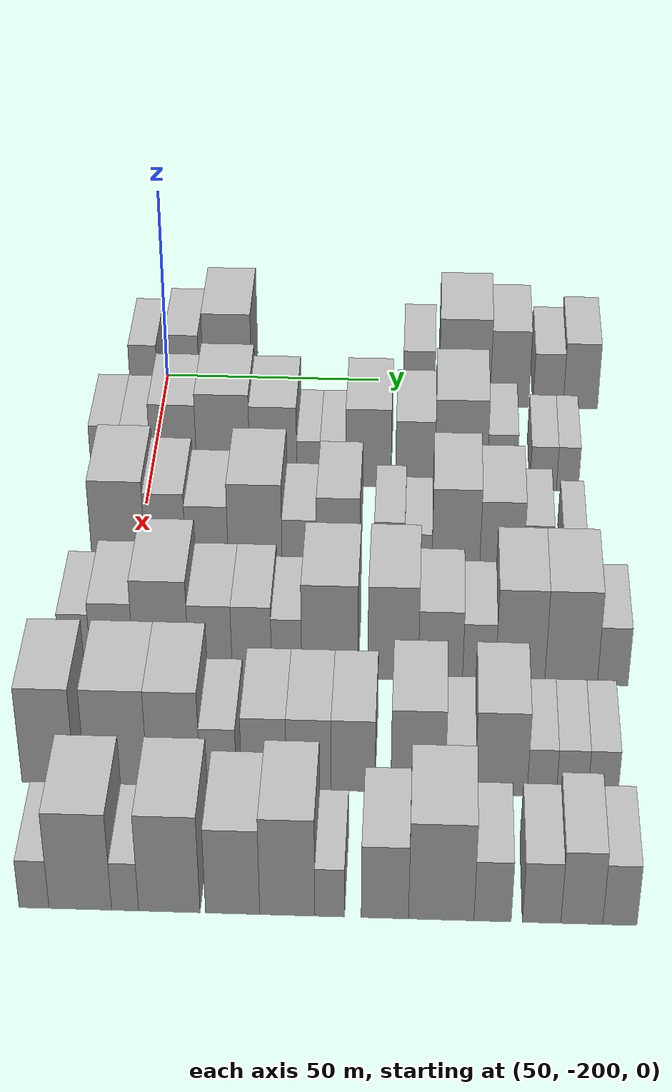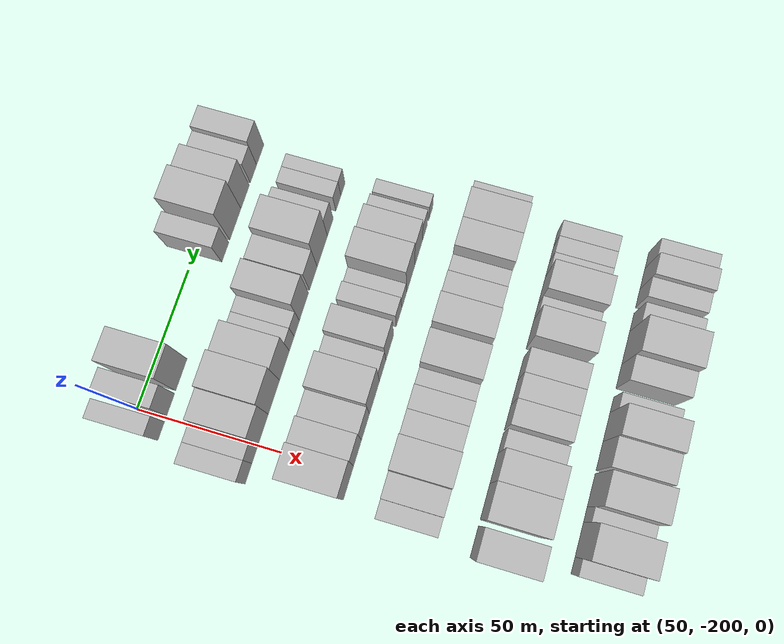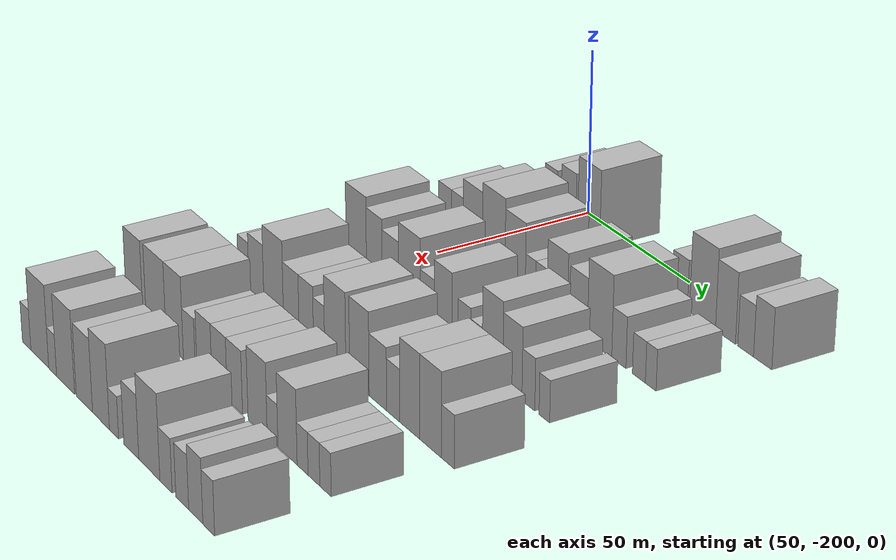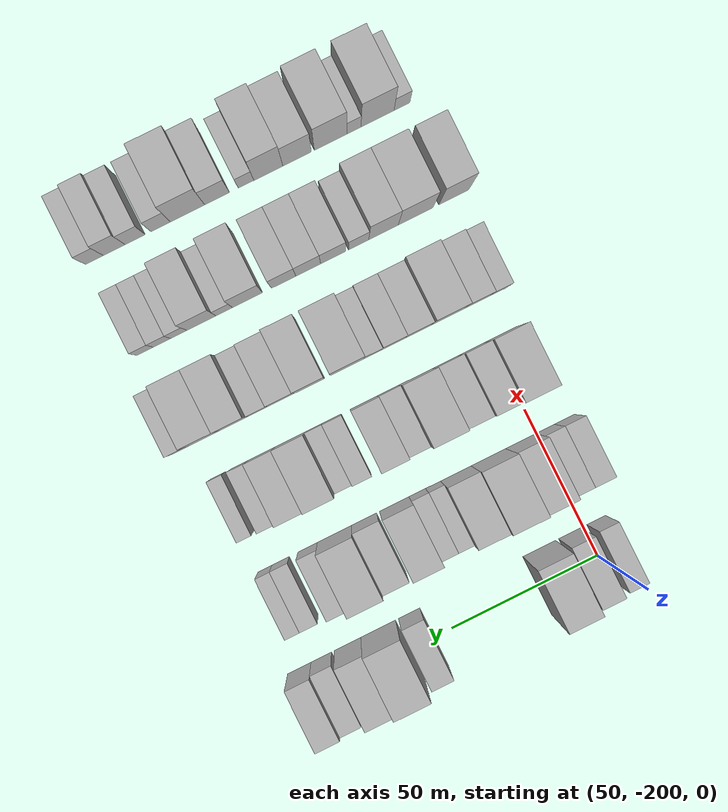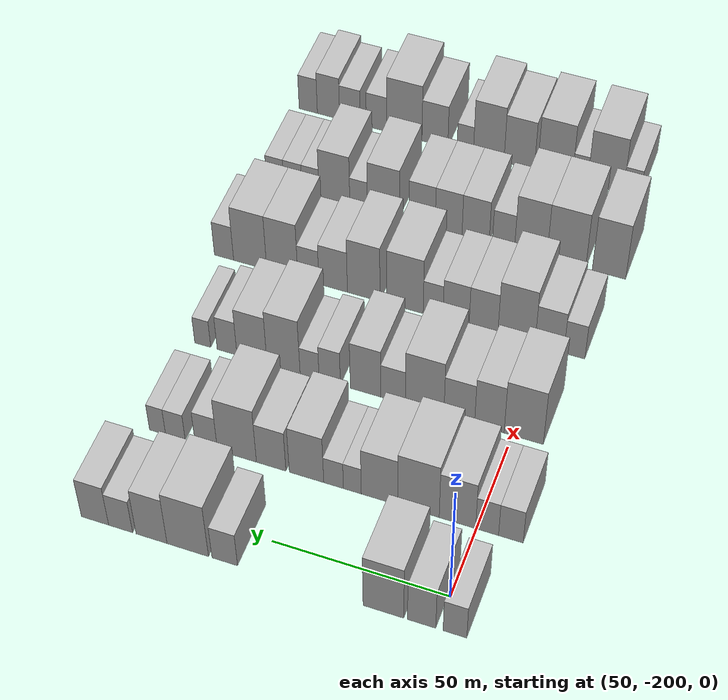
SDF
<sdf version="1.6">
 <world name="default">
  <model name="building_39">
   <static>1</static>
   <pose>50.0000 -204.4974 0 0.000000 0.000000 0.000000</pose>
   <link name="link">
    <pose>0 0 7.50 0 0 0</pose>
    <collision name="collision"><geometry><box><size>20.0000 6.4379 15.0000</size></box></geometry></collision>
    <visual name="visual">
     <cast_shadows>0</cast_shadows>
     <geometry><box><size>20.0000 6.4379 15.0000</size></box></geometry>
     <material>
      <script>
       <uri>model://HANNAS_wall/materials/scripts</uri>
       <uri>model://HANNAS_wall/materials/textures</uri>
       <name>vrc/HANNAS_wall</name>
      </script>
     </material>
    </visual>
   </link>
  </model>
  <model name="building_40">
   <static>1</static>
   <pose>50.0000 -195.4062 0 0.000000 0.000000 0.000000</pose>
   <link name="link">
    <pose>0 0 9.00 0 0 0</pose>
    <collision name="collision"><geometry><box><size>20.0000 7.7446 18.0000</size></box></geometry></collision>
    <visual name="visual">
     <cast_shadows>0</cast_shadows>
     <geometry><box><size>20.0000 7.7446 18.0000</size></box></geometry>
     <material>
      <script>
       <uri>model://HANNAS_wall/materials/scripts</uri>
       <uri>model://HANNAS_wall/materials/textures</uri>
       <name>vrc/HANNAS_wall</name>
      </script>
     </material>
    </visual>
   </link>
  </model>
  <model name="building_41">
   <static>1</static>
   <pose>50.0000 -184.9227 0 0.000000 0.000000 0.000000</pose>
   <link name="link">
    <pose>0 0 12.00 0 0 0</pose>
    <collision name="collision"><geometry><box><size>20.0000 11.2224 24.0000</size></box></geometry></collision>
    <visual name="visual">
     <cast_shadows>0</cast_shadows>
     <geometry><box><size>20.0000 11.2224 24.0000</size></box></geometry>
     <material>
      <script>
       <uri>model://HANNAS_wall/materials/scripts</uri>
       <uri>model://HANNAS_wall/materials/textures</uri>
       <name>vrc/HANNAS_wall</name>
      </script>
     </material>
    </visual>
   </link>
  </model>
  <model name="building_42">
   <static>1</static>
   <pose>50.0000 -140.3606 0 0.000000 0.000000 0.000000</pose>
   <link name="link">
    <pose>0 0 7.50 0 0 0</pose>
    <collision name="collision"><geometry><box><size>20.0000 7.3006 15.0000</size></box></geometry></collision>
    <visual name="visual">
     <cast_shadows>0</cast_shadows>
     <geometry><box><size>20.0000 7.3006 15.0000</size></box></geometry>
     <material>
      <script>
       <uri>model://HANNAS_wall/materials/scripts</uri>
       <uri>model://HANNAS_wall/materials/textures</uri>
       <name>vrc/HANNAS_wall</name>
      </script>
     </material>
    </visual>
   </link>
  </model>
  <model name="building_43">
   <static>1</static>
   <pose>50.0000 -129.7411 0 0.000000 0.000000 0.000000</pose>
   <link name="link">
    <pose>0 0 12.00 0 0 0</pose>
    <collision name="collision"><geometry><box><size>20.0000 11.9384 24.0000</size></box></geometry></collision>
    <visual name="visual">
     <cast_shadows>0</cast_shadows>
     <geometry><box><size>20.0000 11.9384 24.0000</size></box></geometry>
     <material>
      <script>
       <uri>model://HANNAS_wall/materials/scripts</uri>
       <uri>model://HANNAS_wall/materials/textures</uri>
       <name>vrc/HANNAS_wall</name>
      </script>
     </material>
    </visual>
   </link>
  </model>
  <model name="building_44">
   <static>1</static>
   <pose>50.0000 -119.2657 0 0.000000 0.000000 0.000000</pose>
   <link name="link">
    <pose>0 0 10.50 0 0 0</pose>
    <collision name="collision"><geometry><box><size>20.0000 9.0125 21.0000</size></box></geometry></collision>
    <visual name="visual">
     <cast_shadows>0</cast_shadows>
     <geometry><box><size>20.0000 9.0125 21.0000</size></box></geometry>
     <material>
      <script>
       <uri>model://HANNAS_wall/materials/scripts</uri>
       <uri>model://HANNAS_wall/materials/textures</uri>
       <name>vrc/HANNAS_wall</name>
      </script>
     </material>
    </visual>
   </link>
  </model>
  <model name="building_45">
   <static>1</static>
   <pose>50.0000 -110.2543 0 0.000000 0.000000 0.000000</pose>
   <link name="link">
    <pose>0 0 7.50 0 0 0</pose>
    <collision name="collision"><geometry><box><size>20.0000 7.0103 15.0000</size></box></geometry></collision>
    <visual name="visual">
     <cast_shadows>0</cast_shadows>
     <geometry><box><size>20.0000 7.0103 15.0000</size></box></geometry>
     <material>
      <script>
       <uri>model://HANNAS_wall/materials/scripts</uri>
       <uri>model://HANNAS_wall/materials/textures</uri>
       <name>vrc/HANNAS_wall</name>
      </script>
     </material>
    </visual>
   </link>
  </model>
  <model name="building_46">
   <static>1</static>
   <pose>50.0000 -102.7471 0 0.000000 0.000000 0.000000</pose>
   <link name="link">
    <pose>0 0 9.00 0 0 0</pose>
    <collision name="collision"><geometry><box><size>20.0000 8.0040 18.0000</size></box></geometry></collision>
    <visual name="visual">
     <cast_shadows>0</cast_shadows>
     <geometry><box><size>20.0000 8.0040 18.0000</size></box></geometry>
     <material>
      <script>
       <uri>model://HANNAS_wall/materials/scripts</uri>
       <uri>model://HANNAS_wall/materials/textures</uri>
       <name>vrc/HANNAS_wall</name>
      </script>
     </material>
    </visual>
   </link>
  </model>
  <model name="building_161">
   <static>1</static>
   <pose>82.0000 -209.4993 0 0.000000 0.000000 0.000000</pose>
   <link name="link">
    <pose>0 0 7.50 0 0 0</pose>
    <collision name="collision"><geometry><box><size>20.0000 6.8890 15.0000</size></box></geometry></collision>
    <visual name="visual">
     <cast_shadows>0</cast_shadows>
     <geometry><box><size>20.0000 6.8890 15.0000</size></box></geometry>
     <material>
      <script>
       <uri>model://HANNAS_wall/materials/scripts</uri>
       <uri>model://HANNAS_wall/materials/textures</uri>
       <name>vrc/HANNAS_wall</name>
      </script>
     </material>
    </visual>
   </link>
  </model>
  <model name="building_162">
   <static>1</static>
   <pose>82.0000 -202.8334 0 0.000000 0.000000 0.000000</pose>
   <link name="link">
    <pose>0 0 7.50 0 0 0</pose>
    <collision name="collision"><geometry><box><size>20.0000 6.4428 15.0000</size></box></geometry></collision>
    <visual name="visual">
     <cast_shadows>0</cast_shadows>
     <geometry><box><size>20.0000 6.4428 15.0000</size></box></geometry>
     <material>
      <script>
       <uri>model://HANNAS_wall/materials/scripts</uri>
       <uri>model://HANNAS_wall/materials/textures</uri>
       <name>vrc/HANNAS_wall</name>
      </script>
     </material>
    </visual>
   </link>
  </model>
  <model name="building_163">
   <static>1</static>
   <pose>82.0000 -194.4719 0 0.000000 0.000000 0.000000</pose>
   <link name="link">
    <pose>0 0 10.50 0 0 0</pose>
    <collision name="collision"><geometry><box><size>20.0000 10.2802 21.0000</size></box></geometry></collision>
    <visual name="visual">
     <cast_shadows>0</cast_shadows>
     <geometry><box><size>20.0000 10.2802 21.0000</size></box></geometry>
     <material>
      <script>
       <uri>model://HANNAS_wall/materials/scripts</uri>
       <uri>model://HANNAS_wall/materials/textures</uri>
       <name>vrc/HANNAS_wall</name>
      </script>
     </material>
    </visual>
   </link>
  </model>
  <model name="building_164">
   <static>1</static>
   <pose>82.0000 -183.4232 0 0.000000 0.000000 0.000000</pose>
   <link name="link">
    <pose>0 0 12.00 0 0 0</pose>
    <collision name="collision"><geometry><box><size>20.0000 11.8173 24.0000</size></box></geometry></collision>
    <visual name="visual">
     <cast_shadows>0</cast_shadows>
     <geometry><box><size>20.0000 11.8173 24.0000</size></box></geometry>
     <material>
      <script>
       <uri>model://HANNAS_wall/materials/scripts</uri>
       <uri>model://HANNAS_wall/materials/textures</uri>
       <name>vrc/HANNAS_wall</name>
      </script>
     </material>
    </visual>
   </link>
  </model>
  <model name="building_165">
   <static>1</static>
   <pose>82.0000 -172.2883 0 0.000000 0.000000 0.000000</pose>
   <link name="link">
    <pose>0 0 10.50 0 0 0</pose>
    <collision name="collision"><geometry><box><size>20.0000 10.4525 21.0000</size></box></geometry></collision>
    <visual name="visual">
     <cast_shadows>0</cast_shadows>
     <geometry><box><size>20.0000 10.4525 21.0000</size></box></geometry>
     <material>
      <script>
       <uri>model://HANNAS_wall/materials/scripts</uri>
       <uri>model://HANNAS_wall/materials/textures</uri>
       <name>vrc/HANNAS_wall</name>
      </script>
     </material>
    </visual>
   </link>
  </model>
  <model name="building_166">
   <static>1</static>
   <pose>82.0000 -164.4801 0 0.000000 0.000000 0.000000</pose>
   <link name="link">
    <pose>0 0 6.00 0 0 0</pose>
    <collision name="collision"><geometry><box><size>20.0000 5.1637 12.0000</size></box></geometry></collision>
    <visual name="visual">
     <cast_shadows>0</cast_shadows>
     <geometry><box><size>20.0000 5.1637 12.0000</size></box></geometry>
     <material>
      <script>
       <uri>model://HANNAS_wall/materials/scripts</uri>
       <uri>model://HANNAS_wall/materials/textures</uri>
       <name>vrc/HANNAS_wall</name>
      </script>
     </material>
    </visual>
   </link>
  </model>
  <model name="building_167">
   <static>1</static>
   <pose>82.0000 -159.0493 0 0.000000 0.000000 0.000000</pose>
   <link name="link">
    <pose>0 0 6.00 0 0 0</pose>
    <collision name="collision"><geometry><box><size>20.0000 5.6979 12.0000</size></box></geometry></collision>
    <visual name="visual">
     <cast_shadows>0</cast_shadows>
     <geometry><box><size>20.0000 5.6979 12.0000</size></box></geometry>
     <material>
      <script>
       <uri>model://HANNAS_wall/materials/scripts</uri>
       <uri>model://HANNAS_wall/materials/textures</uri>
       <name>vrc/HANNAS_wall</name>
      </script>
     </material>
    </visual>
   </link>
  </model>
  <model name="building_168">
   <static>1</static>
   <pose>82.0000 -151.1769 0 0.000000 0.000000 0.000000</pose>
   <link name="link">
    <pose>0 0 10.50 0 0 0</pose>
    <collision name="collision"><geometry><box><size>20.0000 10.0469 21.0000</size></box></geometry></collision>
    <visual name="visual">
     <cast_shadows>0</cast_shadows>
     <geometry><box><size>20.0000 10.0469 21.0000</size></box></geometry>
     <material>
      <script>
       <uri>model://HANNAS_wall/materials/scripts</uri>
       <uri>model://HANNAS_wall/materials/textures</uri>
       <name>vrc/HANNAS_wall</name>
      </script>
     </material>
    </visual>
   </link>
  </model>
  <model name="building_169">
   <static>1</static>
   <pose>82.0000 -140.8138 0 0.000000 0.000000 0.000000</pose>
   <link name="link">
    <pose>0 0 9.00 0 0 0</pose>
    <collision name="collision"><geometry><box><size>20.0000 8.6794 18.0000</size></box></geometry></collision>
    <visual name="visual">
     <cast_shadows>0</cast_shadows>
     <geometry><box><size>20.0000 8.6794 18.0000</size></box></geometry>
     <material>
      <script>
       <uri>model://HANNAS_wall/materials/scripts</uri>
       <uri>model://HANNAS_wall/materials/textures</uri>
       <name>vrc/HANNAS_wall</name>
      </script>
     </material>
    </visual>
   </link>
  </model>
  <model name="building_170">
   <static>1</static>
   <pose>82.0000 -130.6874 0 0.000000 0.000000 0.000000</pose>
   <link name="link">
    <pose>0 0 12.00 0 0 0</pose>
    <collision name="collision"><geometry><box><size>20.0000 11.5734 24.0000</size></box></geometry></collision>
    <visual name="visual">
     <cast_shadows>0</cast_shadows>
     <geometry><box><size>20.0000 11.5734 24.0000</size></box></geometry>
     <material>
      <script>
       <uri>model://HANNAS_wall/materials/scripts</uri>
       <uri>model://HANNAS_wall/materials/textures</uri>
       <name>vrc/HANNAS_wall</name>
      </script>
     </material>
    </visual>
   </link>
  </model>
  <model name="building_171">
   <static>1</static>
   <pose>82.0000 -121.5918 0 0.000000 0.000000 0.000000</pose>
   <link name="link">
    <pose>0 0 7.50 0 0 0</pose>
    <collision name="collision"><geometry><box><size>20.0000 6.6177 15.0000</size></box></geometry></collision>
    <visual name="visual">
     <cast_shadows>0</cast_shadows>
     <geometry><box><size>20.0000 6.6177 15.0000</size></box></geometry>
     <material>
      <script>
       <uri>model://HANNAS_wall/materials/scripts</uri>
       <uri>model://HANNAS_wall/materials/textures</uri>
       <name>vrc/HANNAS_wall</name>
      </script>
     </material>
    </visual>
   </link>
  </model>
  <model name="building_172">
   <static>1</static>
   <pose>82.0000 -112.3266 0 0.000000 0.000000 0.000000</pose>
   <link name="link">
    <pose>0 0 6.00 0 0 0</pose>
    <collision name="collision"><geometry><box><size>20.0000 5.9127 12.0000</size></box></geometry></collision>
    <visual name="visual">
     <cast_shadows>0</cast_shadows>
     <geometry><box><size>20.0000 5.9127 12.0000</size></box></geometry>
     <material>
      <script>
       <uri>model://HANNAS_wall/materials/scripts</uri>
       <uri>model://HANNAS_wall/materials/textures</uri>
       <name>vrc/HANNAS_wall</name>
      </script>
     </material>
    </visual>
   </link>
  </model>
  <model name="building_173">
   <static>1</static>
   <pose>82.0000 -106.9481 0 0.000000 0.000000 0.000000</pose>
   <link name="link">
    <pose>0 0 6.00 0 0 0</pose>
    <collision name="collision"><geometry><box><size>20.0000 4.8443 12.0000</size></box></geometry></collision>
    <visual name="visual">
     <cast_shadows>0</cast_shadows>
     <geometry><box><size>20.0000 4.8443 12.0000</size></box></geometry>
     <material>
      <script>
       <uri>model://HANNAS_wall/materials/scripts</uri>
       <uri>model://HANNAS_wall/materials/textures</uri>
       <name>vrc/HANNAS_wall</name>
      </script>
     </material>
    </visual>
   </link>
  </model>
  <model name="building_285">
   <static>1</static>
   <pose>114.0000 -203.1136 0 0.000000 0.000000 0.000000</pose>
   <link name="link">
    <pose>0 0 12.00 0 0 0</pose>
    <collision name="collision"><geometry><box><size>20.0000 11.3482 24.0000</size></box></geometry></collision>
    <visual name="visual">
     <cast_shadows>0</cast_shadows>
     <geometry><box><size>20.0000 11.3482 24.0000</size></box></geometry>
     <material>
      <script>
       <uri>model://HANNAS_wall/materials/scripts</uri>
       <uri>model://HANNAS_wall/materials/textures</uri>
       <name>vrc/HANNAS_wall</name>
      </script>
     </material>
    </visual>
   </link>
  </model>
  <model name="building_286">
   <static>1</static>
   <pose>114.0000 -193.1419 0 0.000000 0.000000 0.000000</pose>
   <link name="link">
    <pose>0 0 10.50 0 0 0</pose>
    <collision name="collision"><geometry><box><size>20.0000 8.5953 21.0000</size></box></geometry></collision>
    <visual name="visual">
     <cast_shadows>0</cast_shadows>
     <geometry><box><size>20.0000 8.5953 21.0000</size></box></geometry>
     <material>
      <script>
       <uri>model://HANNAS_wall/materials/scripts</uri>
       <uri>model://HANNAS_wall/materials/textures</uri>
       <name>vrc/HANNAS_wall</name>
      </script>
     </material>
    </visual>
   </link>
  </model>
  <model name="building_287">
   <static>1</static>
   <pose>114.0000 -184.3505 0 0.000000 0.000000 0.000000</pose>
   <link name="link">
    <pose>0 0 9.00 0 0 0</pose>
    <collision name="collision"><geometry><box><size>20.0000 8.9875 18.0000</size></box></geometry></collision>
    <visual name="visual">
     <cast_shadows>0</cast_shadows>
     <geometry><box><size>20.0000 8.9875 18.0000</size></box></geometry>
     <material>
      <script>
       <uri>model://HANNAS_wall/materials/scripts</uri>
       <uri>model://HANNAS_wall/materials/textures</uri>
       <name>vrc/HANNAS_wall</name>
      </script>
     </material>
    </visual>
   </link>
  </model>
  <model name="building_288">
   <static>1</static>
   <pose>114.0000 -174.1548 0 0.000000 0.000000 0.000000</pose>
   <link name="link">
    <pose>0 0 12.00 0 0 0</pose>
    <collision name="collision"><geometry><box><size>20.0000 11.4039 24.0000</size></box></geometry></collision>
    <visual name="visual">
     <cast_shadows>0</cast_shadows>
     <geometry><box><size>20.0000 11.4039 24.0000</size></box></geometry>
     <material>
      <script>
       <uri>model://HANNAS_wall/materials/scripts</uri>
       <uri>model://HANNAS_wall/materials/textures</uri>
       <name>vrc/HANNAS_wall</name>
      </script>
     </material>
    </visual>
   </link>
  </model>
  <model name="building_289">
   <static>1</static>
   <pose>114.0000 -164.8099 0 0.000000 0.000000 0.000000</pose>
   <link name="link">
    <pose>0 0 7.50 0 0 0</pose>
    <collision name="collision"><geometry><box><size>20.0000 7.2859 15.0000</size></box></geometry></collision>
    <visual name="visual">
     <cast_shadows>0</cast_shadows>
     <geometry><box><size>20.0000 7.2859 15.0000</size></box></geometry>
     <material>
      <script>
       <uri>model://HANNAS_wall/materials/scripts</uri>
       <uri>model://HANNAS_wall/materials/textures</uri>
       <name>vrc/HANNAS_wall</name>
      </script>
     </material>
    </visual>
   </link>
  </model>
  <model name="building_290">
   <static>1</static>
   <pose>114.0000 -156.6098 0 0.000000 0.000000 0.000000</pose>
   <link name="link">
    <pose>0 0 10.50 0 0 0</pose>
    <collision name="collision"><geometry><box><size>20.0000 9.1144 21.0000</size></box></geometry></collision>
    <visual name="visual">
     <cast_shadows>0</cast_shadows>
     <geometry><box><size>20.0000 9.1144 21.0000</size></box></geometry>
     <material>
      <script>
       <uri>model://HANNAS_wall/materials/scripts</uri>
       <uri>model://HANNAS_wall/materials/textures</uri>
       <name>vrc/HANNAS_wall</name>
      </script>
     </material>
    </visual>
   </link>
  </model>
  <model name="building_291">
   <static>1</static>
   <pose>114.0000 -145.8447 0 0.000000 0.000000 0.000000</pose>
   <link name="link">
    <pose>0 0 7.50 0 0 0</pose>
    <collision name="collision"><geometry><box><size>20.0000 6.4157 15.0000</size></box></geometry></collision>
    <visual name="visual">
     <cast_shadows>0</cast_shadows>
     <geometry><box><size>20.0000 6.4157 15.0000</size></box></geometry>
     <material>
      <script>
       <uri>model://HANNAS_wall/materials/scripts</uri>
       <uri>model://HANNAS_wall/materials/textures</uri>
       <name>vrc/HANNAS_wall</name>
      </script>
     </material>
    </visual>
   </link>
  </model>
  <model name="building_292">
   <static>1</static>
   <pose>114.0000 -139.7527 0 0.000000 0.000000 0.000000</pose>
   <link name="link">
    <pose>0 0 6.00 0 0 0</pose>
    <collision name="collision"><geometry><box><size>20.0000 5.7683 12.0000</size></box></geometry></collision>
    <visual name="visual">
     <cast_shadows>0</cast_shadows>
     <geometry><box><size>20.0000 5.7683 12.0000</size></box></geometry>
     <material>
      <script>
       <uri>model://HANNAS_wall/materials/scripts</uri>
       <uri>model://HANNAS_wall/materials/textures</uri>
       <name>vrc/HANNAS_wall</name>
      </script>
     </material>
    </visual>
   </link>
  </model>
  <model name="building_293">
   <static>1</static>
   <pose>114.0000 -131.8295 0 0.000000 0.000000 0.000000</pose>
   <link name="link">
    <pose>0 0 12.00 0 0 0</pose>
    <collision name="collision"><geometry><box><size>20.0000 10.0781 24.0000</size></box></geometry></collision>
    <visual name="visual">
     <cast_shadows>0</cast_shadows>
     <geometry><box><size>20.0000 10.0781 24.0000</size></box></geometry>
     <material>
      <script>
       <uri>model://HANNAS_wall/materials/scripts</uri>
       <uri>model://HANNAS_wall/materials/textures</uri>
       <name>vrc/HANNAS_wall</name>
      </script>
     </material>
    </visual>
   </link>
  </model>
  <model name="building_294">
   <static>1</static>
   <pose>114.0000 -122.1796 0 0.000000 0.000000 0.000000</pose>
   <link name="link">
    <pose>0 0 10.50 0 0 0</pose>
    <collision name="collision"><geometry><box><size>20.0000 9.2217 21.0000</size></box></geometry></collision>
    <visual name="visual">
     <cast_shadows>0</cast_shadows>
     <geometry><box><size>20.0000 9.2217 21.0000</size></box></geometry>
     <material>
      <script>
       <uri>model://HANNAS_wall/materials/scripts</uri>
       <uri>model://HANNAS_wall/materials/textures</uri>
       <name>vrc/HANNAS_wall</name>
      </script>
     </material>
    </visual>
   </link>
  </model>
  <model name="building_295">
   <static>1</static>
   <pose>114.0000 -114.5208 0 0.000000 0.000000 0.000000</pose>
   <link name="link">
    <pose>0 0 7.50 0 0 0</pose>
    <collision name="collision"><geometry><box><size>20.0000 6.0960 15.0000</size></box></geometry></collision>
    <visual name="visual">
     <cast_shadows>0</cast_shadows>
     <geometry><box><size>20.0000 6.0960 15.0000</size></box></geometry>
     <material>
      <script>
       <uri>model://HANNAS_wall/materials/scripts</uri>
       <uri>model://HANNAS_wall/materials/textures</uri>
       <name>vrc/HANNAS_wall</name>
      </script>
     </material>
    </visual>
   </link>
  </model>
  <model name="building_296">
   <static>1</static>
   <pose>114.0000 -106.9999 0 0.000000 0.000000 0.000000</pose>
   <link name="link">
    <pose>0 0 6.00 0 0 0</pose>
    <collision name="collision"><geometry><box><size>20.0000 4.9457 12.0000</size></box></geometry></collision>
    <visual name="visual">
     <cast_shadows>0</cast_shadows>
     <geometry><box><size>20.0000 4.9457 12.0000</size></box></geometry>
     <material>
      <script>
       <uri>model://HANNAS_wall/materials/scripts</uri>
       <uri>model://HANNAS_wall/materials/textures</uri>
       <name>vrc/HANNAS_wall</name>
      </script>
     </material>
    </visual>
   </link>
  </model>
  <model name="building_404">
   <static>1</static>
   <pose>146.0000 -208.2779 0 0.000000 0.000000 0.000000</pose>
   <link name="link">
    <pose>0 0 7.50 0 0 0</pose>
    <collision name="collision"><geometry><box><size>20.0000 6.2192 15.0000</size></box></geometry></collision>
    <visual name="visual">
     <cast_shadows>0</cast_shadows>
     <geometry><box><size>20.0000 6.2192 15.0000</size></box></geometry>
     <material>
      <script>
       <uri>model://HANNAS_wall/materials/scripts</uri>
       <uri>model://HANNAS_wall/materials/textures</uri>
       <name>vrc/HANNAS_wall</name>
      </script>
     </material>
    </visual>
   </link>
  </model>
  <model name="building_405">
   <static>1</static>
   <pose>146.0000 -200.8529 0 0.000000 0.000000 0.000000</pose>
   <link name="link">
    <pose>0 0 9.00 0 0 0</pose>
    <collision name="collision"><geometry><box><size>20.0000 8.6308 18.0000</size></box></geometry></collision>
    <visual name="visual">
     <cast_shadows>0</cast_shadows>
     <geometry><box><size>20.0000 8.6308 18.0000</size></box></geometry>
     <material>
      <script>
       <uri>model://HANNAS_wall/materials/scripts</uri>
       <uri>model://HANNAS_wall/materials/textures</uri>
       <name>vrc/HANNAS_wall</name>
      </script>
     </material>
    </visual>
   </link>
  </model>
  <model name="building_406">
   <static>1</static>
   <pose>146.0000 -190.9635 0 0.000000 0.000000 0.000000</pose>
   <link name="link">
    <pose>0 0 12.00 0 0 0</pose>
    <collision name="collision"><geometry><box><size>20.0000 11.1480 24.0000</size></box></geometry></collision>
    <visual name="visual">
     <cast_shadows>0</cast_shadows>
     <geometry><box><size>20.0000 11.1480 24.0000</size></box></geometry>
     <material>
      <script>
       <uri>model://HANNAS_wall/materials/scripts</uri>
       <uri>model://HANNAS_wall/materials/textures</uri>
       <name>vrc/HANNAS_wall</name>
      </script>
     </material>
    </visual>
   </link>
  </model>
  <model name="building_407">
   <static>1</static>
   <pose>146.0000 -181.0366 0 0.000000 0.000000 0.000000</pose>
   <link name="link">
    <pose>0 0 9.00 0 0 0</pose>
    <collision name="collision"><geometry><box><size>20.0000 8.7058 18.0000</size></box></geometry></collision>
    <visual name="visual">
     <cast_shadows>0</cast_shadows>
     <geometry><box><size>20.0000 8.7058 18.0000</size></box></geometry>
     <material>
      <script>
       <uri>model://HANNAS_wall/materials/scripts</uri>
       <uri>model://HANNAS_wall/materials/textures</uri>
       <name>vrc/HANNAS_wall</name>
      </script>
     </material>
    </visual>
   </link>
  </model>
  <model name="building_408">
   <static>1</static>
   <pose>146.0000 -172.7108 0 0.000000 0.000000 0.000000</pose>
   <link name="link">
    <pose>0 0 9.00 0 0 0</pose>
    <collision name="collision"><geometry><box><size>20.0000 7.9458 18.0000</size></box></geometry></collision>
    <visual name="visual">
     <cast_shadows>0</cast_shadows>
     <geometry><box><size>20.0000 7.9458 18.0000</size></box></geometry>
     <material>
      <script>
       <uri>model://HANNAS_wall/materials/scripts</uri>
       <uri>model://HANNAS_wall/materials/textures</uri>
       <name>vrc/HANNAS_wall</name>
      </script>
     </material>
    </visual>
   </link>
  </model>
  <model name="building_409">
   <static>1</static>
   <pose>146.0000 -165.7113 0 0.000000 0.000000 0.000000</pose>
   <link name="link">
    <pose>0 0 7.50 0 0 0</pose>
    <collision name="collision"><geometry><box><size>20.0000 6.0533 15.0000</size></box></geometry></collision>
    <visual name="visual">
     <cast_shadows>0</cast_shadows>
     <geometry><box><size>20.0000 6.0533 15.0000</size></box></geometry>
     <material>
      <script>
       <uri>model://HANNAS_wall/materials/scripts</uri>
       <uri>model://HANNAS_wall/materials/textures</uri>
       <name>vrc/HANNAS_wall</name>
      </script>
     </material>
    </visual>
   </link>
  </model>
  <model name="building_410">
   <static>1</static>
   <pose>146.0000 -157.0324 0 0.000000 0.000000 0.000000</pose>
   <link name="link">
    <pose>0 0 12.00 0 0 0</pose>
    <collision name="collision"><geometry><box><size>20.0000 11.3045 24.0000</size></box></geometry></collision>
    <visual name="visual">
     <cast_shadows>0</cast_shadows>
     <geometry><box><size>20.0000 11.3045 24.0000</size></box></geometry>
     <material>
      <script>
       <uri>model://HANNAS_wall/materials/scripts</uri>
       <uri>model://HANNAS_wall/materials/textures</uri>
       <name>vrc/HANNAS_wall</name>
      </script>
     </material>
    </visual>
   </link>
  </model>
  <model name="building_411">
   <static>1</static>
   <pose>146.0000 -144.3334 0 0.000000 0.000000 0.000000</pose>
   <link name="link">
    <pose>0 0 12.00 0 0 0</pose>
    <collision name="collision"><geometry><box><size>20.0000 10.0935 24.0000</size></box></geometry></collision>
    <visual name="visual">
     <cast_shadows>0</cast_shadows>
     <geometry><box><size>20.0000 10.0935 24.0000</size></box></geometry>
     <material>
      <script>
       <uri>model://HANNAS_wall/materials/scripts</uri>
       <uri>model://HANNAS_wall/materials/textures</uri>
       <name>vrc/HANNAS_wall</name>
      </script>
     </material>
    </visual>
   </link>
  </model>
  <model name="building_412">
   <static>1</static>
   <pose>146.0000 -134.8382 0 0.000000 0.000000 0.000000</pose>
   <link name="link">
    <pose>0 0 9.00 0 0 0</pose>
    <collision name="collision"><geometry><box><size>20.0000 8.8970 18.0000</size></box></geometry></collision>
    <visual name="visual">
     <cast_shadows>0</cast_shadows>
     <geometry><box><size>20.0000 8.8970 18.0000</size></box></geometry>
     <material>
      <script>
       <uri>model://HANNAS_wall/materials/scripts</uri>
       <uri>model://HANNAS_wall/materials/textures</uri>
       <name>vrc/HANNAS_wall</name>
      </script>
     </material>
    </visual>
   </link>
  </model>
  <model name="building_413">
   <static>1</static>
   <pose>146.0000 -127.0889 0 0.000000 0.000000 0.000000</pose>
   <link name="link">
    <pose>0 0 7.50 0 0 0</pose>
    <collision name="collision"><geometry><box><size>20.0000 6.6016 15.0000</size></box></geometry></collision>
    <visual name="visual">
     <cast_shadows>0</cast_shadows>
     <geometry><box><size>20.0000 6.6016 15.0000</size></box></geometry>
     <material>
      <script>
       <uri>model://HANNAS_wall/materials/scripts</uri>
       <uri>model://HANNAS_wall/materials/textures</uri>
       <name>vrc/HANNAS_wall</name>
      </script>
     </material>
    </visual>
   </link>
  </model>
  <model name="building_414">
   <static>1</static>
   <pose>146.0000 -118.8479 0 0.000000 0.000000 0.000000</pose>
   <link name="link">
    <pose>0 0 12.00 0 0 0</pose>
    <collision name="collision"><geometry><box><size>20.0000 9.8803 24.0000</size></box></geometry></collision>
    <visual name="visual">
     <cast_shadows>0</cast_shadows>
     <geometry><box><size>20.0000 9.8803 24.0000</size></box></geometry>
     <material>
      <script>
       <uri>model://HANNAS_wall/materials/scripts</uri>
       <uri>model://HANNAS_wall/materials/textures</uri>
       <name>vrc/HANNAS_wall</name>
      </script>
     </material>
    </visual>
   </link>
  </model>
  <model name="building_415">
   <static>1</static>
   <pose>146.0000 -108.6319 0 0.000000 0.000000 0.000000</pose>
   <link name="link">
    <pose>0 0 12.00 0 0 0</pose>
    <collision name="collision"><geometry><box><size>20.0000 10.5516 24.0000</size></box></geometry></collision>
    <visual name="visual">
     <cast_shadows>0</cast_shadows>
     <geometry><box><size>20.0000 10.5516 24.0000</size></box></geometry>
     <material>
      <script>
       <uri>model://HANNAS_wall/materials/scripts</uri>
       <uri>model://HANNAS_wall/materials/textures</uri>
       <name>vrc/HANNAS_wall</name>
      </script>
     </material>
    </visual>
   </link>
  </model>
  <model name="building_416">
   <static>1</static>
   <pose>146.0000 -100.2928 0 0.000000 0.000000 0.000000</pose>
   <link name="link">
    <pose>0 0 7.50 0 0 0</pose>
    <collision name="collision"><geometry><box><size>20.0000 6.1266 15.0000</size></box></geometry></collision>
    <visual name="visual">
     <cast_shadows>0</cast_shadows>
     <geometry><box><size>20.0000 6.1266 15.0000</size></box></geometry>
     <material>
      <script>
       <uri>model://HANNAS_wall/materials/scripts</uri>
       <uri>model://HANNAS_wall/materials/textures</uri>
       <name>vrc/HANNAS_wall</name>
      </script>
     </material>
    </visual>
   </link>
  </model>
  <model name="building_522">
   <static>1</static>
   <pose>178.0000 -209.4433 0 0.000000 0.000000 0.000000</pose>
   <link name="link">
    <pose>0 0 12.00 0 0 0</pose>
    <collision name="collision"><geometry><box><size>20.0000 10.1929 24.0000</size></box></geometry></collision>
    <visual name="visual">
     <cast_shadows>0</cast_shadows>
     <geometry><box><size>20.0000 10.1929 24.0000</size></box></geometry>
     <material>
      <script>
       <uri>model://HANNAS_wall/materials/scripts</uri>
       <uri>model://HANNAS_wall/materials/textures</uri>
       <name>vrc/HANNAS_wall</name>
      </script>
     </material>
    </visual>
   </link>
  </model>
  <model name="building_523">
   <static>1</static>
   <pose>178.0000 -196.3884 0 0.000000 0.000000 0.000000</pose>
   <link name="link">
    <pose>0 0 12.00 0 0 0</pose>
    <collision name="collision"><geometry><box><size>20.0000 11.9169 24.0000</size></box></geometry></collision>
    <visual name="visual">
     <cast_shadows>0</cast_shadows>
     <geometry><box><size>20.0000 11.9169 24.0000</size></box></geometry>
     <material>
      <script>
       <uri>model://HANNAS_wall/materials/scripts</uri>
       <uri>model://HANNAS_wall/materials/textures</uri>
       <name>vrc/HANNAS_wall</name>
      </script>
     </material>
    </visual>
   </link>
  </model>
  <model name="building_524">
   <static>1</static>
   <pose>178.0000 -185.3894 0 0.000000 0.000000 0.000000</pose>
   <link name="link">
    <pose>0 0 12.00 0 0 0</pose>
    <collision name="collision"><geometry><box><size>20.0000 10.0812 24.0000</size></box></geometry></collision>
    <visual name="visual">
     <cast_shadows>0</cast_shadows>
     <geometry><box><size>20.0000 10.0812 24.0000</size></box></geometry>
     <material>
      <script>
       <uri>model://HANNAS_wall/materials/scripts</uri>
       <uri>model://HANNAS_wall/materials/textures</uri>
       <name>vrc/HANNAS_wall</name>
      </script>
     </material>
    </visual>
   </link>
  </model>
  <model name="building_525">
   <static>1</static>
   <pose>178.0000 -176.9013 0 0.000000 0.000000 0.000000</pose>
   <link name="link">
    <pose>0 0 7.50 0 0 0</pose>
    <collision name="collision"><geometry><box><size>20.0000 6.8950 15.0000</size></box></geometry></collision>
    <visual name="visual">
     <cast_shadows>0</cast_shadows>
     <geometry><box><size>20.0000 6.8950 15.0000</size></box></geometry>
     <material>
      <script>
       <uri>model://HANNAS_wall/materials/scripts</uri>
       <uri>model://HANNAS_wall/materials/textures</uri>
       <name>vrc/HANNAS_wall</name>
      </script>
     </material>
    </visual>
   </link>
  </model>
  <model name="building_526">
   <static>1</static>
   <pose>178.0000 -168.1829 0 0.000000 0.000000 0.000000</pose>
   <link name="link">
    <pose>0 0 9.00 0 0 0</pose>
    <collision name="collision"><geometry><box><size>20.0000 8.5417 18.0000</size></box></geometry></collision>
    <visual name="visual">
     <cast_shadows>0</cast_shadows>
     <geometry><box><size>20.0000 8.5417 18.0000</size></box></geometry>
     <material>
      <script>
       <uri>model://HANNAS_wall/materials/scripts</uri>
       <uri>model://HANNAS_wall/materials/textures</uri>
       <name>vrc/HANNAS_wall</name>
      </script>
     </material>
    </visual>
   </link>
  </model>
  <model name="building_527">
   <static>1</static>
   <pose>178.0000 -159.6691 0 0.000000 0.000000 0.000000</pose>
   <link name="link">
    <pose>0 0 9.00 0 0 0</pose>
    <collision name="collision"><geometry><box><size>20.0000 8.4860 18.0000</size></box></geometry></collision>
    <visual name="visual">
     <cast_shadows>0</cast_shadows>
     <geometry><box><size>20.0000 8.4860 18.0000</size></box></geometry>
     <material>
      <script>
       <uri>model://HANNAS_wall/materials/scripts</uri>
       <uri>model://HANNAS_wall/materials/textures</uri>
       <name>vrc/HANNAS_wall</name>
      </script>
     </material>
    </visual>
   </link>
  </model>
  <model name="building_528">
   <static>1</static>
   <pose>178.0000 -151.2458 0 0.000000 0.000000 0.000000</pose>
   <link name="link">
    <pose>0 0 9.00 0 0 0</pose>
    <collision name="collision"><geometry><box><size>20.0000 8.3605 18.0000</size></box></geometry></collision>
    <visual name="visual">
     <cast_shadows>0</cast_shadows>
     <geometry><box><size>20.0000 8.3605 18.0000</size></box></geometry>
     <material>
      <script>
       <uri>model://HANNAS_wall/materials/scripts</uri>
       <uri>model://HANNAS_wall/materials/textures</uri>
       <name>vrc/HANNAS_wall</name>
      </script>
     </material>
    </visual>
   </link>
  </model>
  <model name="building_529">
   <static>1</static>
   <pose>178.0000 -138.9315 0 0.000000 0.000000 0.000000</pose>
   <link name="link">
    <pose>0 0 10.50 0 0 0</pose>
    <collision name="collision"><geometry><box><size>20.0000 10.2683 21.0000</size></box></geometry></collision>
    <visual name="visual">
     <cast_shadows>0</cast_shadows>
     <geometry><box><size>20.0000 10.2683 21.0000</size></box></geometry>
     <material>
      <script>
       <uri>model://HANNAS_wall/materials/scripts</uri>
       <uri>model://HANNAS_wall/materials/textures</uri>
       <name>vrc/HANNAS_wall</name>
      </script>
     </material>
    </visual>
   </link>
  </model>
  <model name="building_530">
   <static>1</static>
   <pose>178.0000 -130.9774 0 0.000000 0.000000 0.000000</pose>
   <link name="link">
    <pose>0 0 6.00 0 0 0</pose>
    <collision name="collision"><geometry><box><size>20.0000 5.6397 12.0000</size></box></geometry></collision>
    <visual name="visual">
     <cast_shadows>0</cast_shadows>
     <geometry><box><size>20.0000 5.6397 12.0000</size></box></geometry>
     <material>
      <script>
       <uri>model://HANNAS_wall/materials/scripts</uri>
       <uri>model://HANNAS_wall/materials/textures</uri>
       <name>vrc/HANNAS_wall</name>
      </script>
     </material>
    </visual>
   </link>
  </model>
  <model name="building_531">
   <static>1</static>
   <pose>178.0000 -123.1819 0 0.000000 0.000000 0.000000</pose>
   <link name="link">
    <pose>0 0 10.50 0 0 0</pose>
    <collision name="collision"><geometry><box><size>20.0000 9.9513 21.0000</size></box></geometry></collision>
    <visual name="visual">
     <cast_shadows>0</cast_shadows>
     <geometry><box><size>20.0000 9.9513 21.0000</size></box></geometry>
     <material>
      <script>
       <uri>model://HANNAS_wall/materials/scripts</uri>
       <uri>model://HANNAS_wall/materials/textures</uri>
       <name>vrc/HANNAS_wall</name>
      </script>
     </material>
    </visual>
   </link>
  </model>
  <model name="building_532">
   <static>1</static>
   <pose>178.0000 -115.4287 0 0.000000 0.000000 0.000000</pose>
   <link name="link">
    <pose>0 0 6.00 0 0 0</pose>
    <collision name="collision"><geometry><box><size>20.0000 5.5552 12.0000</size></box></geometry></collision>
    <visual name="visual">
     <cast_shadows>0</cast_shadows>
     <geometry><box><size>20.0000 5.5552 12.0000</size></box></geometry>
     <material>
      <script>
       <uri>model://HANNAS_wall/materials/scripts</uri>
       <uri>model://HANNAS_wall/materials/textures</uri>
       <name>vrc/HANNAS_wall</name>
      </script>
     </material>
    </visual>
   </link>
  </model>
  <model name="building_533">
   <static>1</static>
   <pose>178.0000 -109.6747 0 0.000000 0.000000 0.000000</pose>
   <link name="link">
    <pose>0 0 6.00 0 0 0</pose>
    <collision name="collision"><geometry><box><size>20.0000 5.9528 12.0000</size></box></geometry></collision>
    <visual name="visual">
     <cast_shadows>0</cast_shadows>
     <geometry><box><size>20.0000 5.9528 12.0000</size></box></geometry>
     <material>
      <script>
       <uri>model://HANNAS_wall/materials/scripts</uri>
       <uri>model://HANNAS_wall/materials/textures</uri>
       <name>vrc/HANNAS_wall</name>
      </script>
     </material>
    </visual>
   </link>
  </model>
  <model name="building_534">
   <static>1</static>
   <pose>178.0000 -103.8631 0 0.000000 0.000000 0.000000</pose>
   <link name="link">
    <pose>0 0 6.00 0 0 0</pose>
    <collision name="collision"><geometry><box><size>20.0000 5.6706 12.0000</size></box></geometry></collision>
    <visual name="visual">
     <cast_shadows>0</cast_shadows>
     <geometry><box><size>20.0000 5.6706 12.0000</size></box></geometry>
     <material>
      <script>
       <uri>model://HANNAS_wall/materials/scripts</uri>
       <uri>model://HANNAS_wall/materials/textures</uri>
       <name>vrc/HANNAS_wall</name>
      </script>
     </material>
    </visual>
   </link>
  </model>
  <model name="building_635">
   <static>1</static>
   <pose>210.0000 -207.6534 0 0.000000 0.000000 0.000000</pose>
   <link name="link">
    <pose>0 0 6.00 0 0 0</pose>
    <collision name="collision"><geometry><box><size>20.0000 5.4087 12.0000</size></box></geometry></collision>
    <visual name="visual">
     <cast_shadows>0</cast_shadows>
     <geometry><box><size>20.0000 5.4087 12.0000</size></box></geometry>
     <material>
      <script>
       <uri>model://HANNAS_wall/materials/scripts</uri>
       <uri>model://HANNAS_wall/materials/textures</uri>
       <name>vrc/HANNAS_wall</name>
      </script>
     </material>
    </visual>
   </link>
  </model>
  <model name="building_636">
   <static>1</static>
   <pose>210.0000 -199.2901 0 0.000000 0.000000 0.000000</pose>
   <link name="link">
    <pose>0 0 12.00 0 0 0</pose>
    <collision name="collision"><geometry><box><size>20.0000 11.3177 24.0000</size></box></geometry></collision>
    <visual name="visual">
     <cast_shadows>0</cast_shadows>
     <geometry><box><size>20.0000 11.3177 24.0000</size></box></geometry>
     <material>
      <script>
       <uri>model://HANNAS_wall/materials/scripts</uri>
       <uri>model://HANNAS_wall/materials/textures</uri>
       <name>vrc/HANNAS_wall</name>
      </script>
     </material>
    </visual>
   </link>
  </model>
  <model name="building_637">
   <static>1</static>
   <pose>210.0000 -191.1939 0 0.000000 0.000000 0.000000</pose>
   <link name="link">
    <pose>0 0 6.00 0 0 0</pose>
    <collision name="collision"><geometry><box><size>20.0000 4.8748 12.0000</size></box></geometry></collision>
    <visual name="visual">
     <cast_shadows>0</cast_shadows>
     <geometry><box><size>20.0000 4.8748 12.0000</size></box></geometry>
     <material>
      <script>
       <uri>model://HANNAS_wall/materials/scripts</uri>
       <uri>model://HANNAS_wall/materials/textures</uri>
       <name>vrc/HANNAS_wall</name>
      </script>
     </material>
    </visual>
   </link>
  </model>
  <model name="building_638">
   <static>1</static>
   <pose>210.0000 -183.2109 0 0.000000 0.000000 0.000000</pose>
   <link name="link">
    <pose>0 0 12.00 0 0 0</pose>
    <collision name="collision"><geometry><box><size>20.0000 11.0911 24.0000</size></box></geometry></collision>
    <visual name="visual">
     <cast_shadows>0</cast_shadows>
     <geometry><box><size>20.0000 11.0911 24.0000</size></box></geometry>
     <material>
      <script>
       <uri>model://HANNAS_wall/materials/scripts</uri>
       <uri>model://HANNAS_wall/materials/textures</uri>
       <name>vrc/HANNAS_wall</name>
      </script>
     </material>
    </visual>
   </link>
  </model>
  <model name="building_639">
   <static>1</static>
   <pose>210.0000 -171.7836 0 0.000000 0.000000 0.000000</pose>
   <link name="link">
    <pose>0 0 10.50 0 0 0</pose>
    <collision name="collision"><geometry><box><size>20.0000 9.7636 21.0000</size></box></geometry></collision>
    <visual name="visual">
     <cast_shadows>0</cast_shadows>
     <geometry><box><size>20.0000 9.7636 21.0000</size></box></geometry>
     <material>
      <script>
       <uri>model://HANNAS_wall/materials/scripts</uri>
       <uri>model://HANNAS_wall/materials/textures</uri>
       <name>vrc/HANNAS_wall</name>
      </script>
     </material>
    </visual>
   </link>
  </model>
  <model name="building_640">
   <static>1</static>
   <pose>210.0000 -161.9436 0 0.000000 0.000000 0.000000</pose>
   <link name="link">
    <pose>0 0 12.00 0 0 0</pose>
    <collision name="collision"><geometry><box><size>20.0000 9.9163 24.0000</size></box></geometry></collision>
    <visual name="visual">
     <cast_shadows>0</cast_shadows>
     <geometry><box><size>20.0000 9.9163 24.0000</size></box></geometry>
     <material>
      <script>
       <uri>model://HANNAS_wall/materials/scripts</uri>
       <uri>model://HANNAS_wall/materials/textures</uri>
       <name>vrc/HANNAS_wall</name>
      </script>
     </material>
    </visual>
   </link>
  </model>
  <model name="building_641">
   <static>1</static>
   <pose>210.0000 -154.3224 0 0.000000 0.000000 0.000000</pose>
   <link name="link">
    <pose>0 0 6.00 0 0 0</pose>
    <collision name="collision"><geometry><box><size>20.0000 5.3261 12.0000</size></box></geometry></collision>
    <visual name="visual">
     <cast_shadows>0</cast_shadows>
     <geometry><box><size>20.0000 5.3261 12.0000</size></box></geometry>
     <material>
      <script>
       <uri>model://HANNAS_wall/materials/scripts</uri>
       <uri>model://HANNAS_wall/materials/textures</uri>
       <name>vrc/HANNAS_wall</name>
      </script>
     </material>
    </visual>
   </link>
  </model>
  <model name="building_642">
   <static>1</static>
   <pose>210.0000 -144.4202 0 0.000000 0.000000 0.000000</pose>
   <link name="link">
    <pose>0 0 9.00 0 0 0</pose>
    <collision name="collision"><geometry><box><size>20.0000 8.4784 18.0000</size></box></geometry></collision>
    <visual name="visual">
     <cast_shadows>0</cast_shadows>
     <geometry><box><size>20.0000 8.4784 18.0000</size></box></geometry>
     <material>
      <script>
       <uri>model://HANNAS_wall/materials/scripts</uri>
       <uri>model://HANNAS_wall/materials/textures</uri>
       <name>vrc/HANNAS_wall</name>
      </script>
     </material>
    </visual>
   </link>
  </model>
  <model name="building_643">
   <static>1</static>
   <pose>210.0000 -134.3225 0 0.000000 0.000000 0.000000</pose>
   <link name="link">
    <pose>0 0 12.00 0 0 0</pose>
    <collision name="collision"><geometry><box><size>20.0000 11.7169 24.0000</size></box></geometry></collision>
    <visual name="visual">
     <cast_shadows>0</cast_shadows>
     <geometry><box><size>20.0000 11.7169 24.0000</size></box></geometry>
     <material>
      <script>
       <uri>model://HANNAS_wall/materials/scripts</uri>
       <uri>model://HANNAS_wall/materials/textures</uri>
       <name>vrc/HANNAS_wall</name>
      </script>
     </material>
    </visual>
   </link>
  </model>
  <model name="building_644">
   <static>1</static>
   <pose>210.0000 -125.1271 0 0.000000 0.000000 0.000000</pose>
   <link name="link">
    <pose>0 0 7.50 0 0 0</pose>
    <collision name="collision"><geometry><box><size>20.0000 6.6738 15.0000</size></box></geometry></collision>
    <visual name="visual">
     <cast_shadows>0</cast_shadows>
     <geometry><box><size>20.0000 6.6738 15.0000</size></box></geometry>
     <material>
      <script>
       <uri>model://HANNAS_wall/materials/scripts</uri>
       <uri>model://HANNAS_wall/materials/textures</uri>
       <name>vrc/HANNAS_wall</name>
      </script>
     </material>
    </visual>
   </link>
  </model>
  <model name="building_645">
   <static>1</static>
   <pose>210.0000 -116.3502 0 0.000000 0.000000 0.000000</pose>
   <link name="link">
    <pose>0 0 7.50 0 0 0</pose>
    <collision name="collision"><geometry><box><size>20.0000 6.8802 15.0000</size></box></geometry></collision>
    <visual name="visual">
     <cast_shadows>0</cast_shadows>
     <geometry><box><size>20.0000 6.8802 15.0000</size></box></geometry>
     <material>
      <script>
       <uri>model://HANNAS_wall/materials/scripts</uri>
       <uri>model://HANNAS_wall/materials/textures</uri>
       <name>vrc/HANNAS_wall</name>
      </script>
     </material>
    </visual>
   </link>
  </model>
  <model name="building_646">
   <static>1</static>
   <pose>210.0000 -109.1700 0 0.000000 0.000000 0.000000</pose>
   <link name="link">
    <pose>0 0 9.00 0 0 0</pose>
    <collision name="collision"><geometry><box><size>20.0000 7.4802 18.0000</size></box></geometry></collision>
    <visual name="visual">
     <cast_shadows>0</cast_shadows>
     <geometry><box><size>20.0000 7.4802 18.0000</size></box></geometry>
     <material>
      <script>
       <uri>model://HANNAS_wall/materials/scripts</uri>
       <uri>model://HANNAS_wall/materials/textures</uri>
       <name>vrc/HANNAS_wall</name>
      </script>
     </material>
    </visual>
   </link>
  </model>
  <model name="building_647">
   <static>1</static>
   <pose>210.0000 -102.3763 0 0.000000 0.000000 0.000000</pose>
   <link name="link">
    <pose>0 0 7.50 0 0 0</pose>
    <collision name="collision"><geometry><box><size>20.0000 6.1071 15.0000</size></box></geometry></collision>
    <visual name="visual">
     <cast_shadows>0</cast_shadows>
     <geometry><box><size>20.0000 6.1071 15.0000</size></box></geometry>
     <material>
      <script>
       <uri>model://HANNAS_wall/materials/scripts</uri>
       <uri>model://HANNAS_wall/materials/textures</uri>
       <name>vrc/HANNAS_wall</name>
      </script>
     </material>
    </visual>
   </link>
  </model>
 </world>
</sdf>
